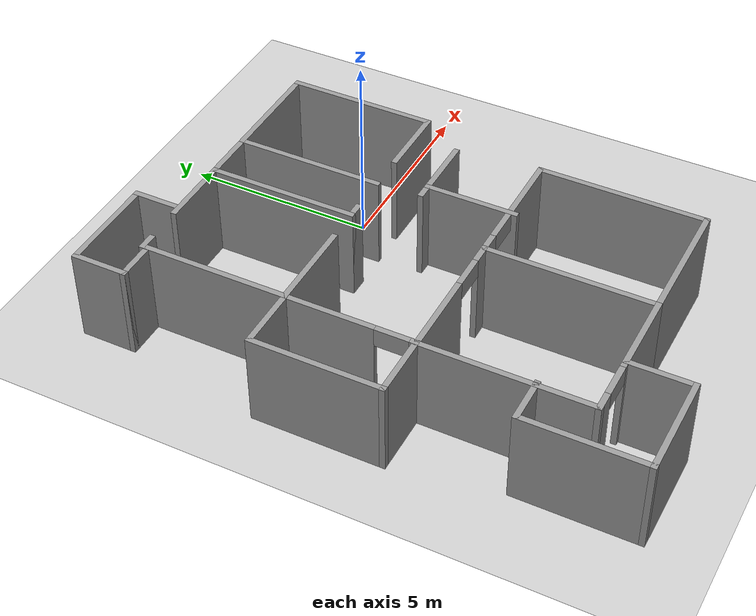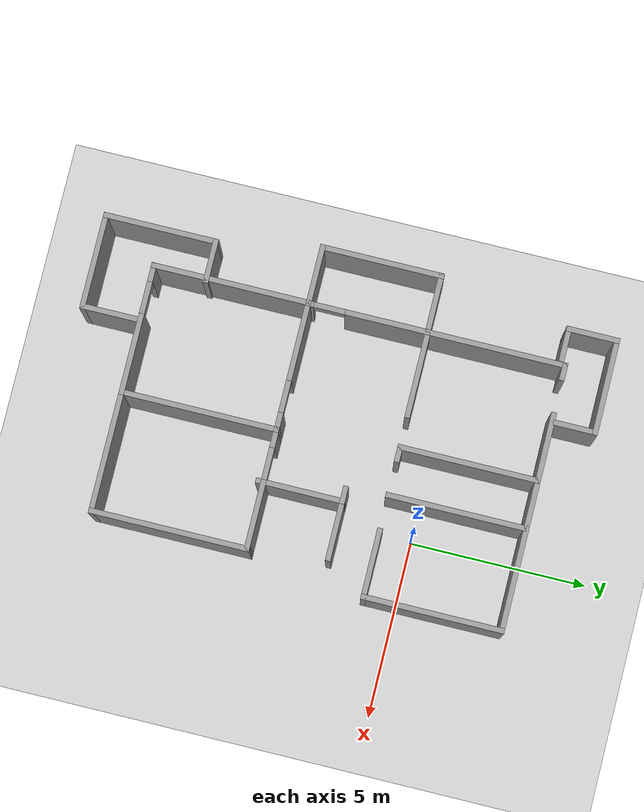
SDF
<sdf version="1.6">
 <world name="default">
  <model name="ground_plane">
   <static>1</static>
   <link name="link">
    <collision name="collision">
     <geometry><plane><normal>0 0 1</normal><size>100 100</size></plane></geometry>
     <surface><friction><ode><mu>100</mu><mu2>50</mu2></ode></friction></surface>
    </collision>
    <visual name="visual">
     <cast_shadows>0</cast_shadows>
     <geometry><plane><normal>0 0 1</normal><size>100 100</size></plane></geometry>
     <material>
      <script><uri>file://media/materials/scripts/gazebo.material</uri><name>Gazebo/Grey</name></script>
     </material>
    </visual>
   </link>
  </model>
  <model name="cma_escritorio">
   <pose>-1.79682 1.02121 0 0 -0 0</pose>
   <link name="Wall_11">
    <collision name="Wall_11_Collision">
     <geometry><box><size>2 0.15 2.5</size></box></geometry>
     <pose>0 0 1.25 0 -0 0</pose>
    </collision>
    <visual name="Wall_11_Visual">
     <pose>0 0 1.25 0 -0 0</pose>
     <geometry><box><size>2 0.15 2.5</size></box></geometry>
     <material>
      <script><uri>file://media/materials/scripts/gazebo.material</uri><name>Gazebo/Grey</name></script>
      <ambient>1 1 1 1</ambient>
     </material>
    </visual>
    <pose>-1.4 1.93 0 0 -0 3.14159</pose>
   </link>
   <link name="Wall_2">
    <collision name="Wall_2_Collision">
     <geometry><box><size>4 0.15 2.5</size></box></geometry>
     <pose>0 0 1.25 0 -0 0</pose>
    </collision>
    <visual name="Wall_2_Visual">
     <pose>0 0 1.25 0 -0 0</pose>
     <geometry><box><size>4 0.15 2.5</size></box></geometry>
     <material>
      <script><uri>file://media/materials/scripts/gazebo.material</uri><name>Gazebo/Grey</name></script>
      <ambient>1 1 1 1</ambient>
     </material>
    </visual>
    <pose>0.875 0.005 0 0 -0 1.5708</pose>
   </link>
   <link name="Wall_25">
    <collision name="Wall_25_Collision">
     <geometry><box><size>2.5 0.15 2.5</size></box></geometry>
     <pose>0 0 1.25 0 -0 0</pose>
    </collision>
    <visual name="Wall_25_Visual">
     <pose>0 0 1.25 0 -0 0</pose>
     <geometry><box><size>2.5 0.15 2.5</size></box></geometry>
     <material>
      <script><uri>file://media/materials/scripts/gazebo.material</uri><name>Gazebo/Grey</name></script>
      <ambient>1 1 1 1</ambient>
     </material>
    </visual>
    <pose>-2.55 -1.93 0 0 -0 3.14159</pose>
   </link>
   <link name="Wall_26">
    <collision name="Wall_26_Collision">
     <geometry><box><size>4 0.15 2.5</size></box></geometry>
     <pose>0 0 1.25 0 -0 0</pose>
    </collision>
    <visual name="Wall_26_Visual">
     <pose>0 0 1.25 0 -0 0</pose>
     <geometry><box><size>4 0.15 2.5</size></box></geometry>
     <material>
      <script><uri>file://media/materials/scripts/gazebo.material</uri><name>Gazebo/Grey</name></script>
      <ambient>1 1 1 1</ambient>
     </material>
    </visual>
    <pose>-3.725 -0.005 0 0 -0 1.5708</pose>
   </link>
   <link name="Wall_27">
    <collision name="Wall_27_Collision">
     <geometry><box><size>0.5 0.15 2.5</size></box></geometry>
     <pose>0 0 1.25 0 -0 0</pose>
    </collision>
    <visual name="Wall_27_Visual">
     <pose>0 0 1.25 0 -0 0</pose>
     <geometry><box><size>0.5 0.15 2.5</size></box></geometry>
     <material>
      <script><uri>file://media/materials/scripts/gazebo.material</uri><name>Gazebo/Grey</name></script>
      <ambient>1 1 1 1</ambient>
     </material>
    </visual>
    <pose>-3.55 1.92 0 0 -0 0</pose>
   </link>
   <link name="Wall_3">
    <collision name="Wall_3_Collision">
     <geometry><box><size>3 0.15 2.5</size></box></geometry>
     <pose>0 0 1.25 0 -0 0</pose>
    </collision>
    <visual name="Wall_3_Visual">
     <pose>0 0 1.25 0 -0 0</pose>
     <geometry><box><size>3 0.15 2.5</size></box></geometry>
     <material>
      <script><uri>file://media/materials/scripts/gazebo.material</uri><name>Gazebo/Grey</name></script>
      <ambient>1 1 1 1</ambient>
     </material>
    </visual>
    <pose>2.3 1.93 0 0 -0 0</pose>
   </link>
   <link name="Wall_4">
    <collision name="Wall_4_Collision">
     <geometry><box><size>4 0.15 2.5</size></box></geometry>
     <pose>0 0 1.25 0 -0 0</pose>
    </collision>
    <visual name="Wall_4_Visual">
     <pose>0 0 1.25 0 -0 0</pose>
     <geometry><box><size>4 0.15 2.5</size></box></geometry>
     <material>
      <script><uri>file://media/materials/scripts/gazebo.material</uri><name>Gazebo/Grey</name></script>
      <ambient>1 1 1 1</ambient>
     </material>
    </visual>
    <pose>3.725 0.005 0 0 0 -1.5708</pose>
   </link>
   <link name="Wall_5">
    <collision name="Wall_5_Collision">
     <geometry><box><size>2 0.15 2.5</size></box></geometry>
     <pose>0 0 1.25 0 -0 0</pose>
    </collision>
    <visual name="Wall_5_Visual">
     <pose>0 0 1.25 0 -0 0</pose>
     <geometry><box><size>2 0.15 2.5</size></box></geometry>
     <material>
      <script><uri>file://media/materials/scripts/gazebo.material</uri><name>Gazebo/Grey</name></script>
      <ambient>1 1 1 1</ambient>
     </material>
    </visual>
    <pose>2.8 -1.92 0 0 -0 3.14159</pose>
   </link>
   <link name="Wall_7">
    <collision name="Wall_7_Collision">
     <geometry><box><size>1.5 0.15 2.5</size></box></geometry>
     <pose>0 0 1.25 0 -0 0</pose>
    </collision>
    <visual name="Wall_7_Visual">
     <pose>0 0 1.25 0 -0 0</pose>
     <geometry><box><size>1.5 0.15 2.5</size></box></geometry>
     <material>
      <script><uri>file://media/materials/scripts/gazebo.material</uri><name>Gazebo/Grey</name></script>
      <ambient>1 1 1 1</ambient>
     </material>
    </visual>
    <pose>0.2 1.93 0 0 -0 3.14159</pose>
   </link>
   <link name="Wall_8">
    <collision name="Wall_8_Collision">
     <geometry><box><size>4 0.15 2.5</size></box></geometry>
     <pose>0 0 1.25 0 -0 0</pose>
    </collision>
    <visual name="Wall_8_Visual">
     <pose>0 0 1.25 0 -0 0</pose>
     <geometry><box><size>4 0.15 2.5</size></box></geometry>
     <material>
      <script><uri>file://media/materials/scripts/gazebo.material</uri><name>Gazebo/Grey</name></script>
      <ambient>1 1 1 1</ambient>
     </material>
    </visual>
    <pose>-0.475 0.005 0 0 0 -1.5708</pose>
   </link>
   <link name="Wall_9">
    <collision name="Wall_9_Collision">
     <geometry><box><size>0.5 0.15 2.5</size></box></geometry>
     <pose>0 0 1.25 0 -0 0</pose>
    </collision>
    <visual name="Wall_9_Visual">
     <pose>0 0 1.25 0 -0 0</pose>
     <geometry><box><size>0.5 0.15 2.5</size></box></geometry>
     <material>
      <script><uri>file://media/materials/scripts/gazebo.material</uri><name>Gazebo/Grey</name></script>
      <ambient>1 1 1 1</ambient>
     </material>
    </visual>
    <pose>-0.3 -1.92 0 0 -0 0</pose>
   </link>
   <static>1</static>
  </model>
  <model name="cma_banheiro">
   <pose>-5.22928 3.4871 0 0 -0 0</pose>
   <link name="Wall_0">
    <collision name="Wall_0_Collision">
     <geometry><box><size>1 0.15 2.5</size></box></geometry>
     <pose>0 0 1.25 0 -0 0</pose>
    </collision>
    <visual name="Wall_0_Visual">
     <pose>0 0 1.25 0 -0 0</pose>
     <geometry><box><size>1 0.15 2.5</size></box></geometry>
     <material>
      <script><uri>file://media/materials/scripts/gazebo.material</uri><name>Gazebo/Grey</name></script>
      <ambient>1 1 1 1</ambient>
     </material>
    </visual>
    <pose>-0.875 -0.675 0 0 -0 3.14159</pose>
   </link>
   <link name="Wall_1">
    <collision name="Wall_1_Collision">
     <geometry><box><size>1.5 0.15 2.5</size></box></geometry>
     <pose>0 0 1.25 0 -0 0</pose>
    </collision>
    <visual name="Wall_1_Visual">
     <pose>0 0 1.25 0 -0 0</pose>
     <geometry><box><size>1.5 0.15 2.5</size></box></geometry>
     <material>
      <script><uri>file://media/materials/scripts/gazebo.material</uri><name>Gazebo/Grey</name></script>
      <ambient>1 1 1 1</ambient>
     </material>
    </visual>
    <pose>-1.3 0 0 0 -0 1.5708</pose>
   </link>
   <link name="Wall_2">
    <collision name="Wall_2_Collision">
     <geometry><box><size>2.75 0.15 2.5</size></box></geometry>
     <pose>0 0 1.25 0 -0 0</pose>
    </collision>
    <visual name="Wall_2_Visual">
     <pose>0 0 1.25 0 -0 0</pose>
     <geometry><box><size>2.75 0.15 2.5</size></box></geometry>
     <material>
      <script><uri>file://media/materials/scripts/gazebo.material</uri><name>Gazebo/Grey</name></script>
      <ambient>1 1 1 1</ambient>
     </material>
    </visual>
    <pose>0 0.675 0 0 -0 0</pose>
   </link>
   <link name="Wall_4">
    <collision name="Wall_4_Collision">
     <geometry><box><size>1.25 0.15 2.5</size></box></geometry>
     <pose>0 0 1.25 0 -0 0</pose>
    </collision>
    <visual name="Wall_4_Visual">
     <pose>0 0 1.25 0 -0 0</pose>
     <geometry><box><size>1.25 0.15 2.5</size></box></geometry>
     <material>
      <script><uri>file://media/materials/scripts/gazebo.material</uri><name>Gazebo/Grey</name></script>
      <ambient>1 1 1 1</ambient>
     </material>
    </visual>
    <pose>1.3 0.125 0 0 0 -1.5708</pose>
   </link>
   <static>1</static>
  </model>
  <model name="cma_varanda1">
   <pose>-6.32518 -2.59313 0 0 -0 0</pose>
   <link name="Wall_0">
    <pose>0.8 0 0 0 0 -1.5708</pose>
    <visual name="Wall_0_Visual_0">
     <pose>-0.5525 0 1.25 0 -0 0</pose>
     <geometry><box><size>2.395 0.15 2.5</size></box></geometry>
     <material>
      <script><uri>file://media/materials/scripts/gazebo.material</uri><name>Gazebo/Grey</name></script>
      <ambient>1 1 1 1</ambient>
     </material>
    </visual>
    <collision name="Wall_0_Collision_0">
     <geometry><box><size>2.395 0.15 2.5</size></box></geometry>
     <pose>-0.5525 0 1.25 0 -0 0</pose>
    </collision>
    <visual name="Wall_0_Visual_1">
     <pose>1.6375 0 1.25 0 -0 0</pose>
     <geometry><box><size>0.225 0.15 2.5</size></box></geometry>
     <material>
      <script><uri>file://media/materials/scripts/gazebo.material</uri><name>Gazebo/Grey</name></script>
      <ambient>1 1 1 1</ambient>
     </material>
    </visual>
    <collision name="Wall_0_Collision_1">
     <geometry><box><size>0.225 0.15 2.5</size></box></geometry>
     <pose>1.6375 0 1.25 0 -0 0</pose>
    </collision>
    <visual name="Wall_0_Visual_2">
     <pose>1.085 0 2.25 0 -0 0</pose>
     <geometry><box><size>0.88 0.15 0.5</size></box></geometry>
     <material>
      <script><uri>file://media/materials/scripts/gazebo.material</uri><name>Gazebo/Grey</name></script>
      <ambient>1 1 1 1</ambient>
     </material>
    </visual>
    <collision name="Wall_0_Collision_2">
     <geometry><box><size>0.88 0.15 0.5</size></box></geometry>
     <pose>1.085 0 2.25 0 -0 0</pose>
    </collision>
   </link>
   <link name="Wall_1">
    <collision name="Wall_1_Collision">
     <geometry><box><size>1.75 0.15 2.5</size></box></geometry>
     <pose>0 0 1.25 0 -0 0</pose>
    </collision>
    <visual name="Wall_1_Visual">
     <pose>0 0 1.25 0 -0 0</pose>
     <geometry><box><size>1.75 0.15 2.5</size></box></geometry>
     <material>
      <script><uri>file://media/materials/scripts/gazebo.material</uri><name>Gazebo/Grey</name></script>
      <ambient>1 1 1 1</ambient>
     </material>
    </visual>
    <pose>0 -1.675 0 0 -0 3.14159</pose>
   </link>
   <link name="Wall_2">
    <collision name="Wall_2_Collision">
     <geometry><box><size>3.5 0.15 2.5</size></box></geometry>
     <pose>0 0 1.25 0 -0 0</pose>
    </collision>
    <visual name="Wall_2_Visual">
     <pose>0 0 1.25 0 -0 0</pose>
     <geometry><box><size>3.5 0.15 2.5</size></box></geometry>
     <material>
      <script><uri>file://media/materials/scripts/gazebo.material</uri><name>Gazebo/Grey</name></script>
      <ambient>1 1 1 1</ambient>
     </material>
    </visual>
    <pose>-0.8 0 0 0 -0 1.5708</pose>
   </link>
   <link name="Wall_3">
    <collision name="Wall_3_Collision">
     <geometry><box><size>1.75 0.15 2.5</size></box></geometry>
     <pose>0 0 1.25 0 -0 0</pose>
    </collision>
    <visual name="Wall_3_Visual">
     <pose>0 0 1.25 0 -0 0</pose>
     <geometry><box><size>1.75 0.15 2.5</size></box></geometry>
     <material>
      <script><uri>file://media/materials/scripts/gazebo.material</uri><name>Gazebo/Grey</name></script>
      <ambient>1 1 1 1</ambient>
     </material>
    </visual>
    <pose>0 1.675 0 0 -0 0</pose>
   </link>
   <static>1</static>
  </model>
  <model name="cma_quartos">
   <pose>-2.58169 -7.26456 0 0 -0 0</pose>
   <link name="Wall_0">
    <collision name="Wall_0_Collision">
     <geometry><box><size>4.5 0.15 2.5</size></box></geometry>
     <pose>0 0 1.25 0 -0 0</pose>
    </collision>
    <visual name="Wall_0_Visual">
     <pose>0 0 1.25 0 -0 0</pose>
     <geometry><box><size>4.5 0.15 2.5</size></box></geometry>
     <material>
      <script><uri>file://media/materials/scripts/gazebo.material</uri><name>Gazebo/Grey</name></script>
      <ambient>1 1 1 1</ambient>
     </material>
    </visual>
    <pose>0.645 0.81 0 0 0 -1.5708</pose>
   </link>
   <link name="Wall_1">
    <pose>-1.155 -1.365 0 0 -0 3.14159</pose>
    <visual name="Wall_1_Visual_0">
     <pose>-0.7225 0 1.25 0 -0 0</pose>
     <geometry><box><size>2.305 0.15 2.5</size></box></geometry>
     <material>
      <script><uri>file://media/materials/scripts/gazebo.material</uri><name>Gazebo/Grey</name></script>
      <ambient>1 1 1 1</ambient>
     </material>
    </visual>
    <collision name="Wall_1_Collision_0">
     <geometry><box><size>2.305 0.15 2.5</size></box></geometry>
     <pose>-0.7225 0 1.25 0 -0 0</pose>
    </collision>
    <visual name="Wall_1_Visual_1">
     <pose>1.6025 0 1.25 0 -0 0</pose>
     <geometry><box><size>0.545 0.15 2.5</size></box></geometry>
     <material>
      <script><uri>file://media/materials/scripts/gazebo.material</uri><name>Gazebo/Grey</name></script>
      <ambient>1 1 1 1</ambient>
     </material>
    </visual>
    <collision name="Wall_1_Collision_1">
     <geometry><box><size>0.545 0.15 2.5</size></box></geometry>
     <pose>1.6025 0 1.25 0 -0 0</pose>
    </collision>
    <visual name="Wall_1_Visual_2">
     <pose>0.88 0 2.25 0 -0 0</pose>
     <geometry><box><size>0.9 0.15 0.5</size></box></geometry>
     <material>
      <script><uri>file://media/materials/scripts/gazebo.material</uri><name>Gazebo/Grey</name></script>
      <ambient>1 1 1 1</ambient>
     </material>
    </visual>
    <collision name="Wall_1_Collision_2">
     <geometry><box><size>0.9 0.15 0.5</size></box></geometry>
     <pose>0.88 0 2.25 0 -0 0</pose>
    </collision>
   </link>
   <link name="Wall_10">
    <collision name="Wall_10_Collision">
     <geometry><box><size>1.75 0.15 2.5</size></box></geometry>
     <pose>0 0 1.25 0 -0 0</pose>
    </collision>
    <visual name="Wall_10_Visual">
     <pose>0 0 1.25 0 -0 0</pose>
     <geometry><box><size>1.75 0.15 2.5</size></box></geometry>
     <material>
      <script><uri>file://media/materials/scripts/gazebo.material</uri><name>Gazebo/Grey</name></script>
      <ambient>1 1 1 1</ambient>
     </material>
    </visual>
    <pose>-1.395 -2.185 0 0 0 -1.5708</pose>
   </link>
   <link name="Wall_11">
    <collision name="Wall_11_Collision">
     <geometry><box><size>2.75 0.15 2.5</size></box></geometry>
     <pose>0 0 1.25 0 -0 0</pose>
    </collision>
    <visual name="Wall_11_Visual">
     <pose>0 0 1.25 0 -0 0</pose>
     <geometry><box><size>2.75 0.15 2.5</size></box></geometry>
     <material>
      <script><uri>file://media/materials/scripts/gazebo.material</uri><name>Gazebo/Grey</name></script>
      <ambient>1 1 1 1</ambient>
     </material>
    </visual>
    <pose>-2.695 -2.985 0 0 -0 3.14159</pose>
   </link>
   <link name="Wall_12">
    <collision name="Wall_12_Collision">
     <geometry><box><size>3.25 0.15 2.5</size></box></geometry>
     <pose>0 0 1.25 0 -0 0</pose>
    </collision>
    <visual name="Wall_12_Visual">
     <pose>0 0 1.25 0 -0 0</pose>
     <geometry><box><size>3.25 0.15 2.5</size></box></geometry>
     <material>
      <script><uri>file://media/materials/scripts/gazebo.material</uri><name>Gazebo/Grey</name></script>
      <ambient>1 1 1 1</ambient>
     </material>
    </visual>
    <pose>-3.995 -1.435 0 0 -0 1.5708</pose>
   </link>
   <link name="Wall_13">
    <collision name="Wall_13_Collision">
     <geometry><box><size>1.25 0.15 2.5</size></box></geometry>
     <pose>0 0 1.25 0 -0 0</pose>
    </collision>
    <visual name="Wall_13_Visual">
     <pose>0 0 1.25 0 -0 0</pose>
     <geometry><box><size>1.25 0.15 2.5</size></box></geometry>
     <material>
      <script><uri>file://media/materials/scripts/gazebo.material</uri><name>Gazebo/Grey</name></script>
      <ambient>1 1 1 1</ambient>
     </material>
    </visual>
    <pose>-3.445 0.115 0 0 -0 0</pose>
   </link>
   <link name="Wall_2">
    <collision name="Wall_2_Collision">
     <geometry><box><size>4.5 0.15 2.5</size></box></geometry>
     <pose>0 0 1.25 0 -0 0</pose>
    </collision>
    <visual name="Wall_2_Visual">
     <pose>0 0 1.25 0 -0 0</pose>
     <geometry><box><size>4.5 0.15 2.5</size></box></geometry>
     <material>
      <script><uri>file://media/materials/scripts/gazebo.material</uri><name>Gazebo/Grey</name></script>
      <ambient>1 1 1 1</ambient>
     </material>
    </visual>
    <pose>-2.955 0.81 0 0 -0 1.5708</pose>
   </link>
   <link name="Wall_3">
    <pose>-1.155 2.985 0 0 -0 0</pose>
    <visual name="Wall_3_Visual_0">
     <pose>-0.7325 0 1.25 0 -0 0</pose>
     <geometry><box><size>2.285 0.15 2.5</size></box></geometry>
     <material>
      <script><uri>file://media/materials/scripts/gazebo.material</uri><name>Gazebo/Grey</name></script>
      <ambient>1 1 1 1</ambient>
     </material>
    </visual>
    <collision name="Wall_3_Collision_0">
     <geometry><box><size>2.285 0.15 2.5</size></box></geometry>
     <pose>-0.7325 0 1.25 0 -0 0</pose>
    </collision>
    <visual name="Wall_3_Visual_1">
     <pose>1.5925 0 1.25 0 -0 0</pose>
     <geometry><box><size>0.565 0.15 2.5</size></box></geometry>
     <material>
      <script><uri>file://media/materials/scripts/gazebo.material</uri><name>Gazebo/Grey</name></script>
      <ambient>1 1 1 1</ambient>
     </material>
    </visual>
    <collision name="Wall_3_Collision_1">
     <geometry><box><size>0.565 0.15 2.5</size></box></geometry>
     <pose>1.5925 0 1.25 0 -0 0</pose>
    </collision>
    <visual name="Wall_3_Visual_2">
     <pose>0.86 0 2.25 0 -0 0</pose>
     <geometry><box><size>0.9 0.15 0.5</size></box></geometry>
     <material>
      <script><uri>file://media/materials/scripts/gazebo.material</uri><name>Gazebo/Grey</name></script>
      <ambient>1 1 1 1</ambient>
     </material>
    </visual>
    <collision name="Wall_3_Collision_2">
     <geometry><box><size>0.9 0.15 0.5</size></box></geometry>
     <pose>0.86 0 2.25 0 -0 0</pose>
    </collision>
   </link>
   <link name="Wall_6">
    <pose>2.32 2.985 0 0 -0 0</pose>
    <visual name="Wall_6_Visual_0">
     <pose>-1.4575 0 1.25 0 -0 0</pose>
     <geometry><box><size>0.585 0.15 2.5</size></box></geometry>
     <material>
      <script><uri>file://media/materials/scripts/gazebo.material</uri><name>Gazebo/Grey</name></script>
      <ambient>1 1 1 1</ambient>
     </material>
    </visual>
    <collision name="Wall_6_Collision_0">
     <geometry><box><size>0.585 0.15 2.5</size></box></geometry>
     <pose>-1.4575 0 1.25 0 -0 0</pose>
    </collision>
    <visual name="Wall_6_Visual_1">
     <pose>0.7425 0 1.25 0 -0 0</pose>
     <geometry><box><size>2.015 0.15 2.5</size></box></geometry>
     <material>
      <script><uri>file://media/materials/scripts/gazebo.material</uri><name>Gazebo/Grey</name></script>
      <ambient>1 1 1 1</ambient>
     </material>
    </visual>
    <collision name="Wall_6_Collision_1">
     <geometry><box><size>2.015 0.15 2.5</size></box></geometry>
     <pose>0.7425 0 1.25 0 -0 0</pose>
    </collision>
    <visual name="Wall_6_Visual_2">
     <pose>-0.715 0 2.25 0 -0 0</pose>
     <geometry><box><size>0.9 0.15 0.5</size></box></geometry>
     <material>
      <script><uri>file://media/materials/scripts/gazebo.material</uri><name>Gazebo/Grey</name></script>
      <ambient>1 1 1 1</ambient>
     </material>
    </visual>
    <collision name="Wall_6_Collision_2">
     <geometry><box><size>0.9 0.15 0.5</size></box></geometry>
     <pose>-0.715 0 2.25 0 -0 0</pose>
    </collision>
   </link>
   <link name="Wall_7">
    <collision name="Wall_7_Collision">
     <geometry><box><size>4.5 0.15 2.5</size></box></geometry>
     <pose>0 0 1.25 0 -0 0</pose>
    </collision>
    <visual name="Wall_7_Visual">
     <pose>0 0 1.25 0 -0 0</pose>
     <geometry><box><size>4.5 0.15 2.5</size></box></geometry>
     <material>
      <script><uri>file://media/materials/scripts/gazebo.material</uri><name>Gazebo/Grey</name></script>
      <ambient>1 1 1 1</ambient>
     </material>
    </visual>
    <pose>3.995 0.81 0 0 0 -1.5708</pose>
   </link>
   <link name="Wall_8">
    <collision name="Wall_8_Collision">
     <geometry><box><size>3.5 0.15 2.5</size></box></geometry>
     <pose>0 0 1.25 0 -0 0</pose>
    </collision>
    <visual name="Wall_8_Visual">
     <pose>0 0 1.25 0 -0 0</pose>
     <geometry><box><size>3.5 0.15 2.5</size></box></geometry>
     <material>
      <script><uri>file://media/materials/scripts/gazebo.material</uri><name>Gazebo/Grey</name></script>
      <ambient>1 1 1 1</ambient>
     </material>
    </visual>
    <pose>2.32 -1.365 0 0 -0 3.14159</pose>
   </link>
   <static>1</static>
  </model>
  <model name="cma_parede_t">
   <pose>0.164039 -3.24829 0 0 -0 0</pose>
   <link name="Wall_15">
    <collision name="Wall_15_Collision">
     <geometry><box><size>2.5 0.15 2.5</size></box></geometry>
     <pose>0 0 1.25 0 -0 0</pose>
    </collision>
    <visual name="Wall_15_Visual">
     <pose>0 0 1.25 0 -0 0</pose>
     <geometry><box><size>2.5 0.15 2.5</size></box></geometry>
     <material>
      <script><uri>file://media/materials/scripts/gazebo.material</uri><name>Gazebo/Grey</name></script>
      <ambient>1 1 1 1</ambient>
     </material>
    </visual>
    <pose>-0.625 0 0 0 -0 1.5708</pose>
   </link>
   <link name="Wall_16">
    <collision name="Wall_16_Collision">
     <geometry><box><size>0.5 0.15 2.5</size></box></geometry>
     <pose>0 0 1.25 0 -0 0</pose>
    </collision>
    <visual name="Wall_16_Visual">
     <pose>0 0 1.25 0 -0 0</pose>
     <geometry><box><size>0.5 0.15 2.5</size></box></geometry>
     <material>
      <script><uri>file://media/materials/scripts/gazebo.material</uri><name>Gazebo/Grey</name></script>
      <ambient>1 1 1 1</ambient>
     </material>
    </visual>
    <pose>-0.8 1.175 0 0 -0 3.14159</pose>
   </link>
   <link name="Wall_18">
    <collision name="Wall_18_Collision">
     <geometry><box><size>1.75 0.15 2.5</size></box></geometry>
     <pose>0 0 1.25 0 -0 0</pose>
    </collision>
    <visual name="Wall_18_Visual">
     <pose>0 0 1.25 0 -0 0</pose>
     <geometry><box><size>1.75 0.15 2.5</size></box></geometry>
     <material>
      <script><uri>file://media/materials/scripts/gazebo.material</uri><name>Gazebo/Grey</name></script>
      <ambient>1 1 1 1</ambient>
     </material>
    </visual>
    <pose>0.175 1.175 0 0 -0 0</pose>
   </link>
   <static>1</static>
  </model>
 </world>
</sdf>
